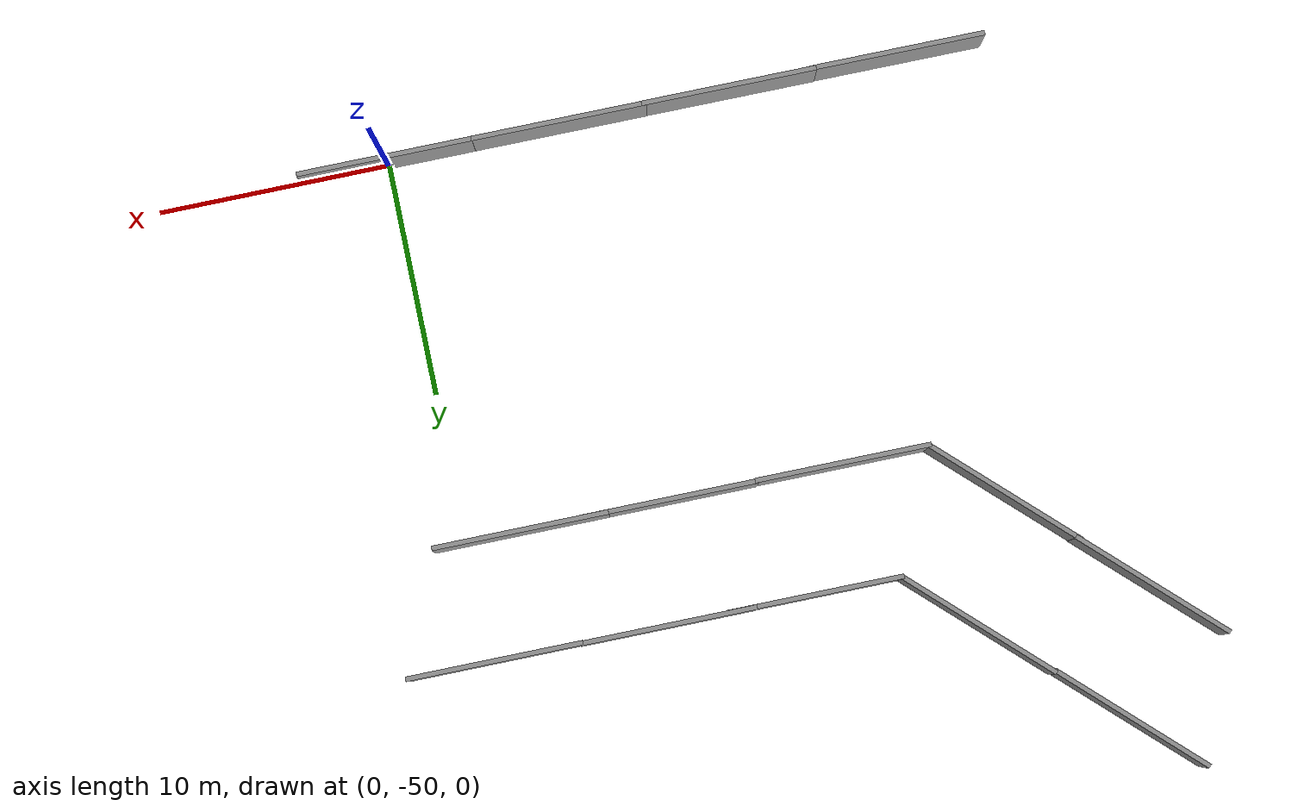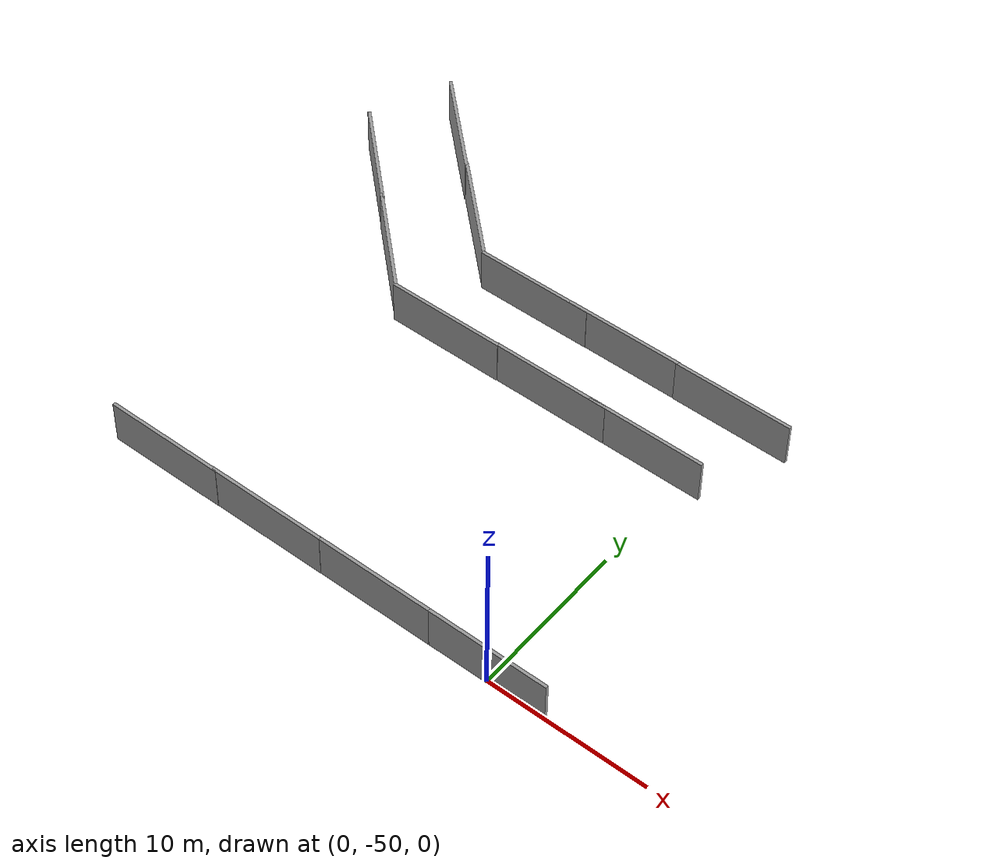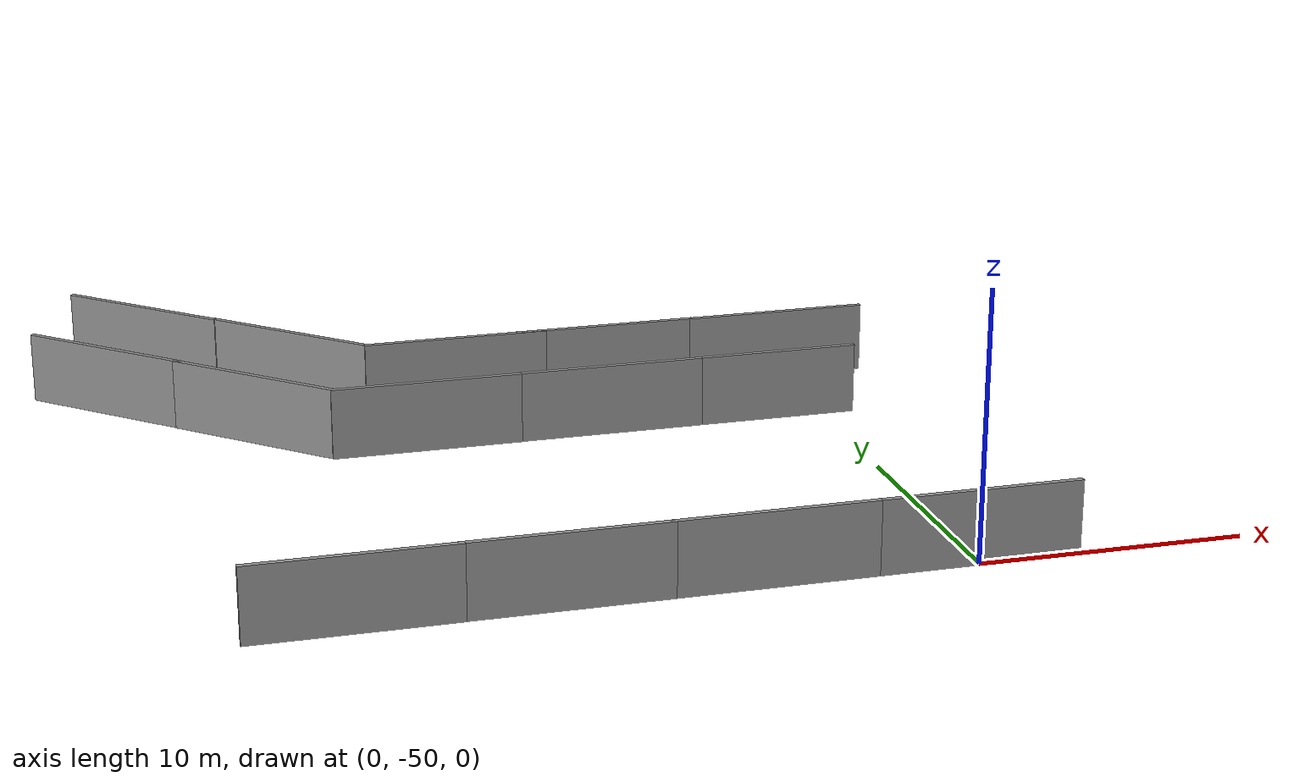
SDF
<sdf version="1.6">
 <world name="default">
  <model name="grey_wall">
   <static>1</static>
   <link name="link">
    <pose>0 0 1.4 0 -0 0</pose>
    <collision name="collision"><geometry><box><size>7.5 0.2 2.8</size></box></geometry></collision>
    <visual name="visual">
     <cast_shadows>0</cast_shadows>
     <geometry><box><size>7.5 0.2 2.8</size></box></geometry>
     <material>
      <script>
       <uri>model://grey_wall/materials/scripts</uri>
       <uri>model://grey_wall/materials/textures</uri>
       <name>vrc/grey_wall</name>
      </script>
     </material>
    </visual>
   </link>
   <pose>0 -50 0 0 -0 0</pose>
  </model>
  <model name="grey_wall_clone">
   <static>1</static>
   <link name="link">
    <pose>0 0 1.4 0 -0 0</pose>
    <collision name="collision"><geometry><box><size>7.5 0.2 2.8</size></box></geometry></collision>
    <visual name="visual">
     <cast_shadows>0</cast_shadows>
     <geometry><box><size>7.5 0.2 2.8</size></box></geometry>
     <material>
      <script>
       <uri>model://grey_wall/materials/scripts</uri>
       <uri>model://grey_wall/materials/textures</uri>
       <name>vrc/grey_wall</name>
      </script>
     </material>
    </visual>
   </link>
   <pose>-7.46873 -50.0037 0 0 -0 0</pose>
  </model>
  <model name="grey_wall_clone_0">
   <static>1</static>
   <link name="link">
    <pose>0 0 1.4 0 -0 0</pose>
    <collision name="collision"><geometry><box><size>7.5 0.2 2.8</size></box></geometry></collision>
    <visual name="visual">
     <cast_shadows>0</cast_shadows>
     <geometry><box><size>7.5 0.2 2.8</size></box></geometry>
     <material>
      <script>
       <uri>model://grey_wall/materials/scripts</uri>
       <uri>model://grey_wall/materials/textures</uri>
       <name>vrc/grey_wall</name>
      </script>
     </material>
    </visual>
   </link>
   <pose>-14.7709 -50.0132 0 0 -0 0</pose>
  </model>
  <model name="grey_wall_clone_1">
   <static>1</static>
   <link name="link">
    <pose>0 0 1.4 0 -0 0</pose>
    <collision name="collision"><geometry><box><size>7.5 0.2 2.8</size></box></geometry></collision>
    <visual name="visual">
     <cast_shadows>0</cast_shadows>
     <geometry><box><size>7.5 0.2 2.8</size></box></geometry>
     <material>
      <script>
       <uri>model://grey_wall/materials/scripts</uri>
       <uri>model://grey_wall/materials/textures</uri>
       <name>vrc/grey_wall</name>
      </script>
     </material>
    </visual>
   </link>
   <pose>-22.0179 -50.0306 0 0 -0 0</pose>
  </model>
  <model name="grey_wall_1_clone_clone_1_clone_clone_3">
   <static>1</static>
   <link name="link">
    <pose>0 0 1.4 0 -0 0</pose>
    <collision name="collision"><geometry><box><size>7.5 0.2 2.8</size></box></geometry></collision>
    <visual name="visual">
     <cast_shadows>0</cast_shadows>
     <geometry><box><size>7.5 0.2 2.8</size></box></geometry>
     <material>
      <script>
       <uri>model://grey_wall/materials/scripts</uri>
       <uri>model://grey_wall/materials/textures</uri>
       <name>vrc/grey_wall</name>
      </script>
     </material>
    </visual>
   </link>
   <pose>-27.7577 -25.9644 0 0 0 -0.76</pose>
  </model>
  <model name="grey_wall_1_clone_clone_1_clone_clone_4">
   <static>1</static>
   <link name="link">
    <pose>0 0 1.4 0 -0 0</pose>
    <collision name="collision"><geometry><box><size>7.5 0.2 2.8</size></box></geometry></collision>
    <visual name="visual">
     <cast_shadows>0</cast_shadows>
     <geometry><box><size>7.5 0.2 2.8</size></box></geometry>
     <material>
      <script>
       <uri>model://grey_wall/materials/scripts</uri>
       <uri>model://grey_wall/materials/textures</uri>
       <name>vrc/grey_wall</name>
      </script>
     </material>
    </visual>
   </link>
   <pose>-22.5892 -30.9096 0 0 0 -0.76</pose>
  </model>
  <model name="grey_wall_clone_1_clone_2">
   <static>1</static>
   <link name="link">
    <pose>0 0 1.4 0 -0 0</pose>
    <collision name="collision"><geometry><box><size>7.5 0.2 2.8</size></box></geometry></collision>
    <visual name="visual">
     <cast_shadows>0</cast_shadows>
     <geometry><box><size>7.5 0.2 2.8</size></box></geometry>
     <material>
      <script>
       <uri>model://grey_wall/materials/scripts</uri>
       <uri>model://grey_wall/materials/textures</uri>
       <name>vrc/grey_wall</name>
      </script>
     </material>
    </visual>
   </link>
   <pose>-16.201 -33.5255 0 0 -0 0</pose>
  </model>
  <model name="grey_wall_clone_1_clone_3">
   <static>1</static>
   <link name="link">
    <pose>0 0 1.4 0 -0 0</pose>
    <collision name="collision"><geometry><box><size>7.5 0.2 2.8</size></box></geometry></collision>
    <visual name="visual">
     <cast_shadows>0</cast_shadows>
     <geometry><box><size>7.5 0.2 2.8</size></box></geometry>
     <material>
      <script>
       <uri>model://grey_wall/materials/scripts</uri>
       <uri>model://grey_wall/materials/textures</uri>
       <name>vrc/grey_wall</name>
      </script>
     </material>
    </visual>
   </link>
   <pose>-8.83599 -33.5002 0 0 -0 0</pose>
  </model>
  <model name="grey_wall_clone_1_clone_4">
   <static>1</static>
   <link name="link">
    <pose>0 0 1.4 0 -0 0</pose>
    <collision name="collision"><geometry><box><size>7.5 0.2 2.8</size></box></geometry></collision>
    <visual name="visual">
     <cast_shadows>0</cast_shadows>
     <geometry><box><size>7.5 0.2 2.8</size></box></geometry>
     <material>
      <script>
       <uri>model://grey_wall/materials/scripts</uri>
       <uri>model://grey_wall/materials/textures</uri>
       <name>vrc/grey_wall</name>
      </script>
     </material>
    </visual>
   </link>
   <pose>-2.46155 -33.4911 0 0 -0 0</pose>
  </model>
  <model name="grey_wall_1_clone_clone_1_clone_clone_5_clone">
   <static>1</static>
   <link name="link">
    <pose>0 0 1.4 0 -0 0</pose>
    <collision name="collision"><geometry><box><size>7.5 0.2 2.8</size></box></geometry></collision>
    <visual name="visual">
     <cast_shadows>0</cast_shadows>
     <geometry><box><size>7.5 0.2 2.8</size></box></geometry>
     <material>
      <script>
       <uri>model://grey_wall/materials/scripts</uri>
       <uri>model://grey_wall/materials/textures</uri>
       <name>vrc/grey_wall</name>
      </script>
     </material>
    </visual>
   </link>
   <pose>-25.7432 -20.7206 0 0 0 -0.76</pose>
  </model>
  <model name="grey_wall_1_clone_clone_1_clone_clone_5_clone_0">
   <static>1</static>
   <link name="link">
    <pose>0 0 1.4 0 -0 0</pose>
    <collision name="collision"><geometry><box><size>7.5 0.2 2.8</size></box></geometry></collision>
    <visual name="visual">
     <cast_shadows>0</cast_shadows>
     <geometry><box><size>7.5 0.2 2.8</size></box></geometry>
     <material>
      <script>
       <uri>model://grey_wall/materials/scripts</uri>
       <uri>model://grey_wall/materials/textures</uri>
       <name>vrc/grey_wall</name>
      </script>
     </material>
    </visual>
   </link>
   <pose>-20.3546 -25.7791 0 0 0 -0.76</pose>
  </model>
  <model name="grey_wall_clone_1_clone_3_clone">
   <static>1</static>
   <link name="link">
    <pose>0 0 1.4 0 -0 0</pose>
    <collision name="collision"><geometry><box><size>7.5 0.2 2.8</size></box></geometry></collision>
    <visual name="visual">
     <cast_shadows>0</cast_shadows>
     <geometry><box><size>7.5 0.2 2.8</size></box></geometry>
     <material>
      <script>
       <uri>model://grey_wall/materials/scripts</uri>
       <uri>model://grey_wall/materials/textures</uri>
       <name>vrc/grey_wall</name>
      </script>
     </material>
    </visual>
   </link>
   <pose>-7.71215 -28.3748 0 0 -0 0</pose>
  </model>
  <model name="grey_wall_clone_1_clone_3_clone_0">
   <static>1</static>
   <link name="link">
    <pose>0 0 1.4 0 -0 0</pose>
    <collision name="collision"><geometry><box><size>7.5 0.2 2.8</size></box></geometry></collision>
    <visual name="visual">
     <cast_shadows>0</cast_shadows>
     <geometry><box><size>7.5 0.2 2.8</size></box></geometry>
     <material>
      <script>
       <uri>model://grey_wall/materials/scripts</uri>
       <uri>model://grey_wall/materials/textures</uri>
       <name>vrc/grey_wall</name>
      </script>
     </material>
    </visual>
   </link>
   <pose>-13.9532 -28.3904 0 0 -0 0</pose>
  </model>
  <model name="grey_wall_clone_1_clone_3_clone_clone">
   <static>1</static>
   <link name="link">
    <pose>0 0 1.4 0 -0 0</pose>
    <collision name="collision"><geometry><box><size>7.5 0.2 2.8</size></box></geometry></collision>
    <visual name="visual">
     <cast_shadows>0</cast_shadows>
     <geometry><box><size>7.5 0.2 2.8</size></box></geometry>
     <material>
      <script>
       <uri>model://grey_wall/materials/scripts</uri>
       <uri>model://grey_wall/materials/textures</uri>
       <name>vrc/grey_wall</name>
      </script>
     </material>
    </visual>
   </link>
   <pose>-0.332364 -28.398 0 0 -0 0</pose>
  </model>
 </world>
</sdf>
